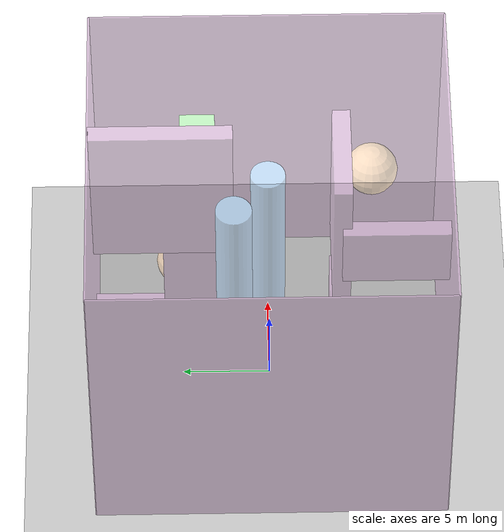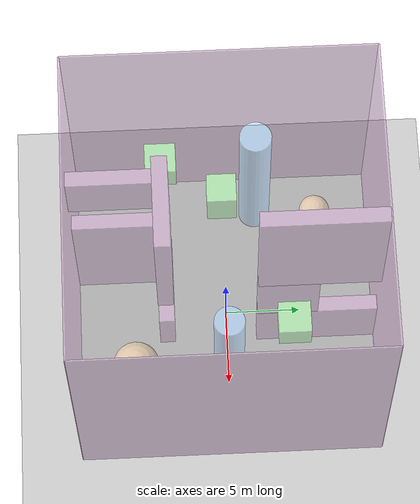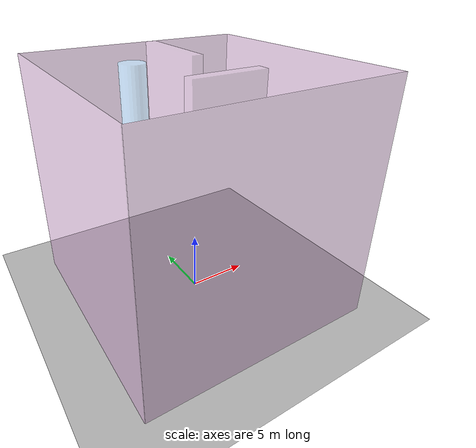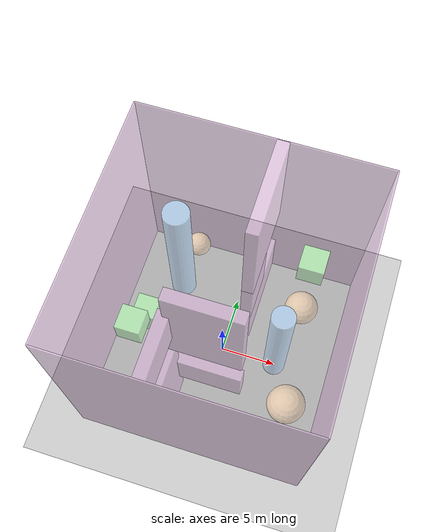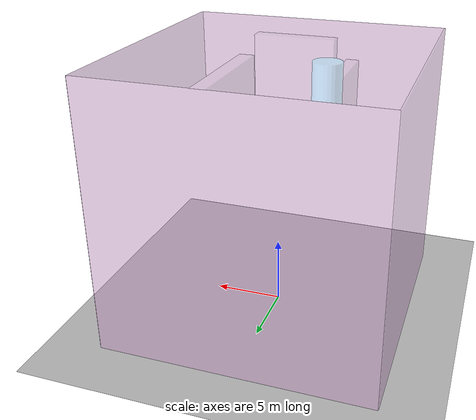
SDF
<?xml version="1.0" ?>
<sdf version="1.6">
  <world name="large_room">
    <!-- Luz del sol para iluminar la escena -->
    <include>
      <uri>model://sun</uri>
    </include>

    <!-- Plano del suelo -->
    <include>
      <uri>model://ground_plane</uri>
    </include>

    <!-- Configuración de física -->
    <physics type="ode">
      <max_step_size>0.002</max_step_size>
      <real_time_update_rate>500</real_time_update_rate>
    </physics>

    <!-- Habitación cerrada sin techo -->
    <model name="room">
      <static>true</static>
      <link name="link">
        <!-- Suelo -->
        <collision name="floor_collision">
          <geometry>
            <box>
              <size>20 20 0.1</size>
            </box>
          </geometry>
          <pose>0 0 -0.05 0 0 0</pose>
        </collision>
        <visual name="floor_visual">
          <geometry>
            <box>
              <size>20 20 0.1</size>
            </box>
          </geometry>
          <material>
            <script>
              <uri>file://media/materials/scripts/gazebo.material</uri>
              <name>Gazebo/Grey</name>
            </script>
          </material>
          <transparency>0.5</transparency>
          <pose>0 0 -0.05 0 0 0</pose>
        </visual>

        <!-- Paredes exteriores (transparencia y grosor 0.1, color morado pastel) -->
        <collision name="wall_1_collision">
          <geometry>
            <box>
              <size>20 0.1 20</size>
            </box>
          </geometry>
          <pose>0 10 10 0 0 0</pose>
        </collision>
        <visual name="wall_1_visual">
          <geometry>
            <box>
              <size>20 0.1 20</size>
            </box>
          </geometry>
          <material>
            <ambient>0.8 0.6 0.8 0.5</ambient>
            <diffuse>0.8 0.6 0.8 0.5</diffuse>
          </material>
          <transparency>0.5</transparency>
          <pose>0 10 10 0 0 0</pose>
        </visual>

        <collision name="wall_2_collision">
          <geometry>
            <box>
              <size>20 0.1 20</size>
            </box>
          </geometry>
          <pose>0 -10 10 0 0 0</pose>
        </collision>
        <visual name="wall_2_visual">
          <geometry>
            <box>
              <size>20 0.1 20</size>
            </box>
          </geometry>
          <material>
            <ambient>0.8 0.6 0.8 0.5</ambient>
            <diffuse>0.8 0.6 0.8 0.5</diffuse>
          </material>
          <transparency>0.5</transparency>
          <pose>0 -10 10 0 0 0</pose>
        </visual>

        <collision name="wall_3_collision">
          <geometry>
            <box>
              <size>0.1 20 20</size>
            </box>
          </geometry>
          <pose>10 0 10 0 0 0</pose>
        </collision>
        <visual name="wall_3_visual">
          <geometry>
            <box>
              <size>0.1 20 20</size>
            </box>
          </geometry>
          <material>
            <ambient>0.8 0.6 0.8 0.5</ambient>
            <diffuse>0.8 0.6 0.8 0.5</diffuse>
          </material>
          <transparency>0.5</transparency>
          <pose>10 0 10 0 0 0</pose>
        </visual>

        <collision name="wall_4_collision">
          <geometry>
            <box>
              <size>0.1 20 20</size>
            </box>
          </geometry>
          <pose>-10 0 10 0 0 0</pose>
        </collision>
        <visual name="wall_4_visual">
          <geometry>
            <box>
              <size>0.1 20 20</size>
            </box>
          </geometry>
          <material>
            <ambient>0.8 0.6 0.8 0.5</ambient>
            <diffuse>0.8 0.6 0.8 0.5</diffuse>
          </material>
          <transparency>0.5</transparency>
          <pose>-10 0 10 0 0 0</pose>
        </visual>
      </link>
    </model>

    <!-- Pared interna apoyada en el suelo -->
    <model name="ground_wall_with_openings">
      <static>true</static>
      <link name="link">
        <!-- Sección izquierda -->
        <collision name="wall_left">
          <geometry>
            <box>
              <size>1 6 10</size>
            </box>
          </geometry>
          <pose>-3 -7 5 0 0 0</pose>
        </collision>
        <visual name="visual_left">
          <geometry>
            <box>
              <size>1 6 10</size>
            </box>
          </geometry>
          <material>
            <ambient>0.8 0.6 0.8 0.5</ambient>
            <diffuse>0.8 0.6 0.8 0.5</diffuse>
          </material>
          <transparency>0.5</transparency>
          <pose>-3 -7 5 0 0 0</pose>
        </visual>

        <collision name="wall_left3">
          <geometry>
            <box>
              <size>1 6 4</size>
            </box>
          </geometry>
          <pose>-3 -7 15 0 0 0</pose>
        </collision>
        <visual name="visual_left3">
          <geometry>
            <box>
              <size>1 6 4</size>
            </box>
          </geometry>
          <material>
            <ambient>0.8 0.6 0.8 0.5</ambient>
            <diffuse>0.8 0.6 0.8 0.5</diffuse>
          </material>
          <transparency>0.5</transparency>
          <pose>-3 -7 15 0 0 0</pose>
        </visual>

        <collision name="wall_left2">
          <geometry>
            <box>
              <size>6 1 10</size>
            </box>
          </geometry>
          <pose>0 -4 15 0 0 0</pose>
        </collision>
        <visual name="visual_left2">
          <geometry>
            <box>
              <size>6 1 10</size>
            </box>
          </geometry>
          <material>
            <ambient>0.8 0.6 0.8 0.5</ambient>
            <diffuse>0.8 0.6 0.8 0.5</diffuse>
          </material>
          <transparency>0.5</transparency>
          <pose>0 -4 15 0 0 0</pose>
        </visual>
        <collision name="wall_left4">
          <geometry>
            <box>
              <size>6 1 4</size>
            </box>
          </geometry>
          <pose>0 -4 5 0 0 0</pose>
        </collision>
        <visual name="visual_left4">
          <geometry>
            <box>
              <size>6 1 4</size>
            </box>
          </geometry>
          <material>
            <ambient>0.8 0.6 0.8 0.5</ambient>
            <diffuse>0.8 0.6 0.8 0.5</diffuse>
          </material>
          <transparency>0.5</transparency>
          <pose>0 -4 5 0 0 0</pose>
        </visual>
      </link>
    </model>

    <!-- Pared interna apoyada en el techo -->
    <model name="ceiling_wall_with_openings">
      <static>true</static>
      <link name="link">
        <collision name="wall_collision">
          <geometry>
            <box>
              <size>1 8 10</size>
            </box>
          </geometry>
          <pose>1.5 6 15 0 0 0</pose>
        </collision>
        <visual name="wall_visual">
          <geometry>
            <box>
              <size>1 8 10</size>
            </box>
          </geometry>
          <material>
            <ambient>0.8 0.6 0.8 0.5</ambient>
            <diffuse>0.8 0.6 0.8 0.5</diffuse>
          </material>
          <transparency>0.5</transparency>
          <pose>1.5 6 15 0 0 0</pose>
        </visual>

        <collision name="wall_collision2">
          <geometry>
            <box>
              <size>1 8 5</size>
            </box>
          </geometry>
          <pose>1.5 6 2.5 0 0 0</pose>
        </collision>
        <visual name="wall_visual2">
          <geometry>
            <box>
              <size>1 8 5</size>
            </box>
          </geometry>
          <material>
            <ambient>0.8 0.6 0.8 0.5</ambient>
            <diffuse>0.8 0.6 0.8 0.5</diffuse>
          </material>
          <transparency>0.5</transparency>
          <pose>1.5 6 2.5 0 0 0</pose>
        </visual>

        <collision name="wall_collision3">
          <geometry>
            <box>
              <size>1 4 5</size>
            </box>
          </geometry>
          <pose>1.5 4 7.5 0 0 0</pose>
        </collision>
        <visual name="wall_visual3">
          <geometry>
            <box>
              <size>1 4 5</size>
            </box>
          </geometry>
          <material>
            <ambient>0.8 0.6 0.8 0.5</ambient>
            <diffuse>0.8 0.6 0.8 0.5</diffuse>
          </material>
          <transparency>0.5</transparency>
          <pose>1.5 4 7.5 0 0 0</pose>
        </visual>
      </link>
    </model>

    <!-- Columnas (color azul pastel con transparencia) -->
    <model name="ceiling_column">
      <static>true</static>
      <link name="link">
        <collision name="collision">
          <geometry>
            <cylinder>
              <radius>1</radius>
              <length>12</length>
            </cylinder>
          </geometry>
          <pose>-4 2 14 0 0 0</pose>
        </collision>
        <visual name="visual">
          <geometry>
            <cylinder>
              <radius>1</radius>
              <length>12</length>
            </cylinder>
          </geometry>
          <material>
            <ambient>0.6 0.8 1 0.5</ambient>
            <diffuse>0.6 0.8 1 0.5</diffuse>
          </material>
          <transparency>0.5</transparency>
          <pose>-4 2 14 0 0 0</pose>
        </visual>
      </link>
    </model>

    <model name="floor_column">
      <static>true</static>
      <link name="link">
        <collision name="collision">
          <geometry>
            <cylinder>
              <radius>1</radius>
              <length>12</length>
            </cylinder>
          </geometry>
          <pose>5 0 6 0 0 0</pose>
        </collision>
        <visual name="visual">
          <geometry>
            <cylinder>
              <radius>1</radius>
              <length>12</length>
            </cylinder>
          </geometry>
          <material>
            <ambient>0.6 0.8 1 0.5</ambient>
            <diffuse>0.6 0.8 1 0.5</diffuse>
          </material>
          <transparency>0.5</transparency>
          <pose>5 0 6 0 0 0</pose>
        </visual>
      </link>
    </model>

    <!-- Esferas adicionales (color naranja pastel con transparencia) -->
    <model name="sphere_1">
      <static>true</static>
      <link name="link">
        <collision name="collision">
          <geometry>
            <sphere>
              <radius>1</radius>
            </sphere>
          </geometry>
          <pose>-4 6 8 0 0 0</pose>
        </collision>
        <visual name="visual">
          <geometry>
            <sphere>
              <radius>1</radius>
            </sphere>
          </geometry>
          <material>
            <ambient>1 0.8 0.6 0.5</ambient>
            <diffuse>1 0.8 0.6 0.5</diffuse>
          </material>
          <transparency>0.5</transparency>
          <pose>-4 6 8 0 0 0</pose>
        </visual>
      </link>
    </model>

    <model name="sphere_2">
      <static>true</static>
      <link name="link">
        <collision name="collision">
          <geometry>
            <sphere>
              <radius>1.5</radius>
            </sphere>
          </geometry>
          <pose>7 -6 10 0 0 0</pose>
        </collision>
        <visual name="visual">
          <geometry>
            <sphere>
              <radius>1.5</radius>
            </sphere>
          </geometry>
          <material>
            <ambient>1 0.8 0.6 0.5</ambient>
            <diffuse>1 0.8 0.6 0.5</diffuse>
          </material>
          <transparency>0.5</transparency>
          <pose>7 -6 10 0 0 0</pose>
        </visual>
      </link>
    </model>

    <model name="sphere_3">
      <static>true</static>
      <link name="link">
        <collision name="collision">
          <geometry>
            <sphere>
              <radius>1.5</radius>
            </sphere>
          </geometry>
          <pose>6 5 3 0 0 0</pose>
        </collision>
        <visual name="visual">
          <geometry>
            <sphere>
              <radius>1.5</radius>
            </sphere>
          </geometry>
          <material>
            <ambient>1 0.8 0.6 0.5</ambient>
            <diffuse>1 0.8 0.6 0.5</diffuse>
          </material>
          <transparency>0.5</transparency>
          <pose>6 5 3 0 0 0</pose>
        </visual>
      </link>
    </model>

    <!-- Cubos adicionales (color verde pastel con transparencia) -->
    <model name="cube_1">
      <static>true</static>
      <link name="link">
        <collision name="collision">
          <geometry>
            <box>
              <size>2 2 2</size>
            </box>
          </geometry>
          <pose>6 4 14 0 0 0</pose>
        </collision>
        <visual name="visual">
          <geometry>
            <box>
              <size>2 2 2</size>
            </box>
          </geometry>
          <material>
            <ambient>0.6 1 0.6 0.5</ambient>
            <diffuse>0.6 1 0.6 0.5</diffuse>
          </material>
          <transparency>0.5</transparency>
          <pose>6 4 14 0 0 0</pose>
        </visual>
      </link>
    </model>

    <model name="cube_2">
      <static>true</static>
      <link name="link">
        <collision name="collision">
          <geometry>
            <box>
              <size>2 2 2</size>
            </box>
          </geometry>
          <pose>-6 -4 12 0 0 0</pose>
        </collision>
        <visual name="visual">
          <geometry>
            <box>
              <size>2 2 2</size>
            </box>
          </geometry>
          <material>
            <ambient>0.6 1 0.6 0.5</ambient>
            <diffuse>0.6 1 0.6 0.5</diffuse>
          </material>
          <transparency>0.5</transparency>
          <pose>-6 -4 12 0 0 0</pose>
        </visual>
      </link>
    </model>

    <model name="cube_3">
      <static>true</static>
      <link name="link">
        <collision name="collision">
          <geometry>
            <box>
              <size>2 2 3</size>
            </box>
          </geometry>
          <pose>-7 0 4 0 0 0</pose>
        </collision>
        <visual name="visual">
          <geometry>
            <box>
              <size>2 2 3</size>
            </box>
          </geometry>
          <material>
            <ambient>0.6 1 0.6 0.5</ambient>
            <diffuse>0.6 1 0.6 0.5</diffuse>
          </material>
          <transparency>0.5</transparency>
          <pose>-7 0 4 0 0 0</pose>
        </visual>
      </link>
    </model>
  </world>
</sdf>
